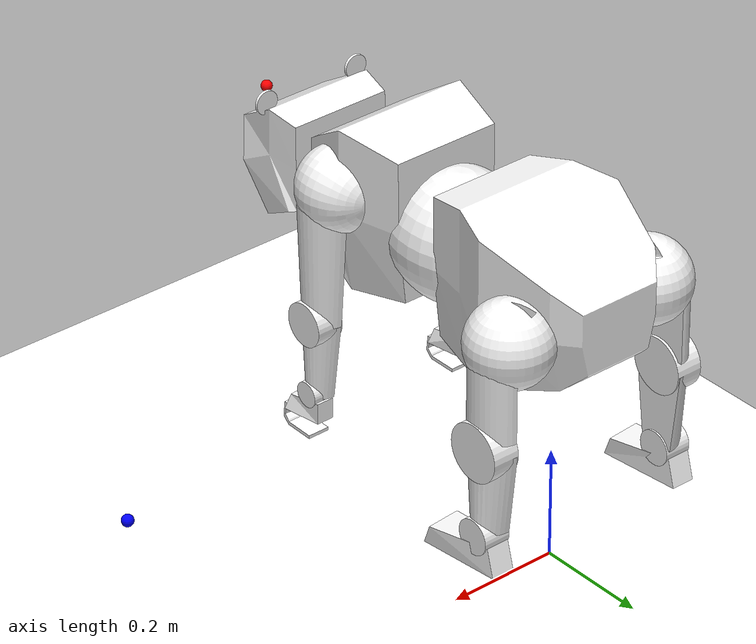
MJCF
<?xml version="1.0" encoding="utf-8"?>
<mujoco model="ground plane">
 <compiler angle="radian" autolimits="true"/>
 <asset>
  <!-- Define checker texture -->
  <texture builtin="checker" height="512" name="checker_tex" rgb1="0.2 0.2 0.6" rgb2="0.8 0.8 1.0" type="2d" width="512"/>
  <material name="checker_mat" texrepeat="3 5" texture="checker_tex"/>
  <mesh file="..\mujoco/..\mujoco/assets/TaiwanBear/Body.obj" name="Body"/>
  <mesh file="..\mujoco/..\mujoco/assets/TaiwanBear/Sphere.008.obj" name="Sphere.008"/>
  <mesh file="..\mujoco/..\mujoco/assets/TaiwanBear/Cylinder.029.obj" name="Cylinder.029"/>
  <mesh file="..\mujoco/..\mujoco/assets/TaiwanBear/Cylinder.028.obj" name="Cylinder.028"/>
  <mesh file="..\mujoco/..\mujoco/assets/TaiwanBear/Cylinder.027.obj" name="Cylinder.027"/>
  <mesh file="..\mujoco/..\mujoco/assets/TaiwanBear/Cylinder.026.obj" name="Cylinder.026"/>
  <mesh file="..\mujoco/..\mujoco/assets/TaiwanBear/Cylinder.025.obj" name="Cylinder.025"/>
  <mesh file="..\mujoco/..\mujoco/assets/TaiwanBear/Sphere.001.obj" name="Sphere.001"/>
  <mesh file="..\mujoco/..\mujoco/assets/TaiwanBear/Cylinder.007.obj" name="Cylinder.007"/>
  <mesh file="..\mujoco/..\mujoco/assets/TaiwanBear/Cylinder.006.obj" name="Cylinder.006"/>
  <mesh file="..\mujoco/..\mujoco/assets/TaiwanBear/Cylinder.005.obj" name="Cylinder.005"/>
  <mesh file="..\mujoco/..\mujoco/assets/TaiwanBear/Cylinder.003.obj" name="Cylinder.003"/>
  <mesh file="..\mujoco/..\mujoco/assets/TaiwanBear/Cylinder.002.obj" name="Cylinder.002"/>
  <mesh file="..\mujoco/..\mujoco/assets/TaiwanBear/Sphere.009.obj" name="Sphere.009"/>
  <mesh file="..\mujoco/..\mujoco/assets/TaiwanBear/Body.002.obj" name="Body.002"/>
  <mesh file="..\mujoco/..\mujoco/assets/TaiwanBear/Sphere.004.obj" name="Sphere.004"/>
  <mesh file="..\mujoco/..\mujoco/assets/TaiwanBear/Cylinder.009.obj" name="Cylinder.009"/>
  <mesh file="..\mujoco/..\mujoco/assets/TaiwanBear/Cylinder.021.obj" name="Cylinder.021"/>
  <mesh file="..\mujoco/..\mujoco/assets/TaiwanBear/Cylinder.022.obj" name="Cylinder.022"/>
  <mesh file="..\mujoco/..\mujoco/assets/TaiwanBear/Cylinder.023.obj" name="Cylinder.023"/>
  <mesh file="..\mujoco/..\mujoco/assets/TaiwanBear/Cylinder.024.obj" name="Cylinder.024"/>
  <mesh file="..\mujoco/..\mujoco/assets/TaiwanBear/Cube.obj" name="Cube"/>
  <mesh file="..\mujoco/..\mujoco/assets/TaiwanBear/Sphere.003.obj" name="Sphere.003"/>
  <mesh file="..\mujoco/..\mujoco/assets/TaiwanBear/Cylinder.001.obj" name="Cylinder.001"/>
  <mesh file="..\mujoco/..\mujoco/assets/TaiwanBear/Cylinder.004.obj" name="Cylinder.004"/>
  <mesh file="..\mujoco/..\mujoco/assets/TaiwanBear/Cylinder.011.obj" name="Cylinder.011"/>
  <mesh file="..\mujoco/..\mujoco/assets/TaiwanBear/Cylinder.012.obj" name="Cylinder.012"/>
  <mesh file="..\mujoco/..\mujoco/assets/TaiwanBear/Cylinder.013.obj" name="Cylinder.013"/>
  <mesh file="..\mujoco/..\mujoco/assets/TaiwanBear/Cube.001.obj" name="Cube.001"/>
  <mesh file="..\mujoco/..\mujoco/assets/TaiwanBear/Sphere.002.obj" name="Sphere.002"/>
  <mesh file="..\mujoco/..\mujoco/assets/TaiwanBear/Body.001.obj" name="Body.001"/>
 </asset>
 <worldbody>
  <camera pos="1.377 -4.506 2.566" xyaxes="0.956 0.292 0.000 -0.140 0.457 0.878"/>
  <body name="ground" pos="0 0 0">
   <geom material="checker_mat" name="floor" rgba="1 1 1 1" size="10 10 0.01" type="plane"/>
  </body>
  <body mocap="true" name="Head Target" pos="0.8 -0.05 0.40" quat="1 0 0 0">
   <site group="1" rgba="0 0 1 1" size="0.01" type="sphere"/>
  </body>
  <body euler="0 0 0" name="TaiwanBear" pos="0 0 0.5">
   <freejoint/>
   <geom mesh="Body" name="TaiwanBear geom" rgba="1.0 1.0 1.0 1.0" type="mesh"/>
   <!-- Parent World [[1.0,0.0,0.0,-0.0],[0.0,1.0,0.0,-0.0],[0.0,0.0,1.0,0.4],[0.0,0.0,0.0,1.0]]-->
   <!-- Parent local [[1.0,0.0,0.0,-0.0],[0.0,1.0,0.0,-0.0],[0.0,0.0,1.0,0.4],[0.0,0.0,0.0,1.0]]-->
   <!-- Parent Inverse [[1.0,0.0,0.0,0.0],[0.0,1.0,0.0,0.0],[0.0,0.0,1.0,0.0],[0.0,0.0,0.0,1.0]]-->
   <!-- Child World [[-0.0,0.0,1.0,0.14],[0.0,1.0,0.0,0.06],[-1.0,0.0,-0.0,-0.01],[0.0,0.0,0.0,1.0]]-->
   <!-- Child Local [[-0.0,0.0,1.0,0.14],[0.0,1.0,0.0,0.06],[-1.0,0.0,-0.0,-0.41],[0.0,0.0,0.0,1.0]]-->
   <!-- Child Basis [[-0.0,0.0,1.0,0.14],[0.0,1.0,0.0,0.06],[-1.0,0.0,-0.0,-0.01],[0.0,0.0,0.0,1.0]]-->
   <!-- Relative Matrix [[-0.0,0.0,1.0,0.14],[0.0,1.0,0.0,0.06],[-1.0,0.0,-0.0,-0.01],[0.0,0.0,0.0,1.0]]-->
   <body name="RJoint_Back_Upper_XYZ_L" pos="0.14427818357944489 0.058760032057762146 -0.007478982210159302" quat="0.7071067094802856 0.0 0.7071068286895752 0.0">
    <joint armature="0.045" axis="1 0 0" damping="3" frictionloss="0.03" name="RJoint_Back_Upper_XYZ_L_X" pos="0.0 0.0 0.0" type="hinge"/>
    <joint armature="0.045" axis="0 1 0" damping="3" frictionloss="0.03" name="RJoint_Back_Upper_XYZ_L_Y" pos="0.0 0.0 0.0" type="hinge"/>
    <joint armature="0.045" axis="0 0 1" damping="3" frictionloss="0.03" name="RJoint_Back_Upper_XYZ_L_Z" pos="0.0 0.0 0.0" type="hinge"/>
    <geom mesh="Sphere.008" name="RJoint_Back_Upper_XYZ_L geom" rgba="1.0 1.0 1.0 1.0" type="mesh"/>
    <!-- Parent World [[-0.0,0.0,1.0,0.14],[0.0,1.0,0.0,0.06],[-1.0,0.0,-0.0,0.39],[0.0,0.0,0.0,1.0]]-->
    <!-- Parent local [[-0.0,0.0,1.0,0.14],[0.0,1.0,0.0,0.06],[-1.0,0.0,-0.0,-0.01],[0.0,0.0,0.0,1.0]]-->
    <!-- Parent Inverse [[1.0,0.0,0.0,0.0],[0.0,1.0,0.0,0.0],[0.0,0.0,1.0,0.0],[0.0,0.0,0.0,1.0]]-->
    <!-- Child World [[-0.0,0.0,-1.0,0.07],[0.0,1.0,0.0,0.0],[1.0,0.0,-0.0,0.05],[0.0,0.0,0.0,1.0]]-->
    <!-- Child Local [[-1.0,0.0,0.0,0.34],[0.0,1.0,0.0,-0.06],[-0.0,0.0,-1.0,-0.07],[0.0,0.0,0.0,1.0]]-->
    <!-- Child Basis [[-0.0,0.0,-1.0,0.07],[0.0,1.0,0.0,0.0],[1.0,0.0,-0.0,0.05],[0.0,0.0,0.0,1.0]]-->
    <!-- Relative Matrix [[-0.0,0.0,-1.0,0.07],[0.0,1.0,0.0,0.0],[1.0,0.0,-0.0,0.05],[0.0,0.0,0.0,1.0]]-->
    <body name="Link_Back_Upper_L" pos="0.07168442010879517 0.0024633705615997314 0.054209932684898376" quat="0.7071067094802856 -0.0 -0.7071068286895752 -0.0">
     <geom mesh="Cylinder.029" name="Link_Back_Upper_L geom" rgba="1.0 1.0 1.0 1.0" type="mesh"/>
     <!-- Parent World [[1.0,0.0,0.0,0.2],[0.0,1.0,0.0,0.06],[0.0,0.0,1.0,0.32],[0.0,0.0,0.0,1.0]]-->
     <!-- Parent local [[-0.0,0.0,-1.0,0.07],[0.0,1.0,0.0,0.0],[1.0,0.0,-0.0,0.05],[0.0,0.0,0.0,1.0]]-->
     <!-- Parent Inverse [[1.0,0.0,0.0,0.0],[0.0,1.0,0.0,0.0],[0.0,0.0,1.0,0.0],[0.0,0.0,0.0,1.0]]-->
     <!-- Child World [[-0.0,0.0,1.0,-0.01],[0.0,1.0,0.0,-0.0],[-1.0,0.0,-0.0,-0.1],[0.0,0.0,0.0,1.0]]-->
     <!-- Child Local [[-0.0,0.0,1.0,-0.2],[0.0,1.0,0.0,-0.06],[-1.0,0.0,-0.0,-0.42],[0.0,0.0,0.0,1.0]]-->
     <!-- Child Basis [[-0.0,0.0,1.0,-0.01],[0.0,1.0,0.0,-0.0],[-1.0,0.0,-0.0,-0.1],[0.0,0.0,0.0,1.0]]-->
     <!-- Relative Matrix [[-0.0,0.0,1.0,-0.01],[0.0,1.0,0.0,-0.0],[-1.0,0.0,-0.0,-0.1],[0.0,0.0,0.0,1.0]]-->
     <body name="RJoint_Back_Lower_Z_L" pos="-0.005224734544754028 -0.002412572503089905 -0.10004378855228424" quat="0.7071067094802856 0.0 0.7071068286895752 0.0">
      <joint armature="0.045" axis="-1.4901161193847656e-07 0.0 -0.9999999403953552" damping="3" frictionloss="0.03" name="RJoint_Back_Lower_Z_L_Z" pos="0.0 0.0 0.0" type="hinge"/>
      <geom mesh="Cylinder.028" name="RJoint_Back_Lower_Z_L geom" rgba="1.0 1.0 1.0 1.0" type="mesh"/>
      <!-- Parent World [[-0.0,0.0,1.0,0.19],[0.0,1.0,0.0,0.06],[-1.0,0.0,-0.0,0.22],[0.0,0.0,0.0,1.0]]-->
      <!-- Parent local [[-0.0,0.0,1.0,-0.01],[0.0,1.0,0.0,-0.0],[-1.0,0.0,-0.0,-0.1],[0.0,0.0,0.0,1.0]]-->
      <!-- Parent Inverse [[1.0,0.0,0.0,0.0],[0.0,1.0,0.0,0.0],[0.0,0.0,1.0,0.0],[0.0,0.0,0.0,1.0]]-->
      <!-- Child World [[-0.0,0.0,-1.0,0.08],[0.0,1.0,0.0,0.0],[1.0,0.0,-0.0,0.0],[0.0,0.0,0.0,1.0]]-->
      <!-- Child Local [[-1.0,0.0,0.0,0.22],[0.0,1.0,0.0,-0.06],[-0.0,0.0,-1.0,-0.12],[0.0,0.0,0.0,1.0]]-->
      <!-- Child Basis [[-0.0,0.0,-1.0,0.08],[0.0,1.0,0.0,0.0],[1.0,0.0,-0.0,0.0],[0.0,0.0,0.0,1.0]]-->
      <!-- Relative Matrix [[-0.0,0.0,-1.0,0.08],[0.0,1.0,0.0,0.0],[1.0,0.0,-0.0,0.0],[0.0,0.0,0.0,1.0]]-->
      <body name="Link_Back_Lower_L" pos="0.07540285587310791 0.0024126097559928894 0.004566282033920288" quat="0.7071067094802856 -0.0 -0.7071068286895752 -0.0">
       <geom mesh="Cylinder.027" name="Link_Back_Lower_L geom" rgba="1.0 1.0 1.0 1.0" type="mesh"/>
       <!-- Parent World [[1.0,0.0,0.0,0.2],[0.0,1.0,0.0,0.06],[-0.0,0.0,1.0,0.15],[0.0,0.0,0.0,1.0]]-->
       <!-- Parent local [[-0.0,0.0,-1.0,0.08],[0.0,1.0,0.0,0.0],[1.0,0.0,-0.0,0.0],[0.0,0.0,0.0,1.0]]-->
       <!-- Parent Inverse [[1.0,0.0,0.0,-0.0],[0.0,1.0,0.0,0.0],[0.0,0.0,1.0,0.0],[0.0,0.0,0.0,1.0]]-->
       <!-- Child World [[-0.0,0.0,1.0,-0.0],[0.0,1.0,0.0,-0.0],[-1.0,0.0,-0.0,-0.08],[0.0,0.0,0.0,1.0]]-->
       <!-- Child Local [[-0.0,0.0,1.0,-0.2],[0.0,1.0,0.0,-0.06],[-1.0,0.0,-0.0,-0.23],[0.0,0.0,0.0,1.0]]-->
       <!-- Child Basis [[-0.0,0.0,1.0,-0.0],[0.0,1.0,0.0,-0.0],[-1.0,0.0,-0.0,-0.08],[0.0,0.0,0.0,1.0]]-->
       <!-- Relative Matrix [[-0.0,0.0,1.0,-0.0],[0.0,1.0,0.0,-0.0],[-1.0,0.0,-0.0,-0.08],[0.0,0.0,0.0,1.0]]-->
       <body name="RJoint_Back_Ankle_Z_L" pos="-0.004567772150039673 -0.0024125464260578156 -0.08303964138031006" quat="0.7071067094802856 0.0 0.7071068286895752 0.0">
        <joint armature="0.045" axis="-1.4901161193847656e-07 0.0 -0.9999999403953552" damping="3" frictionloss="0.03" name="RJoint_Back_Ankle_Z_L_Z" pos="0.0 0.0 0.0" type="hinge"/>
        <geom mesh="Cylinder.026" name="RJoint_Back_Ankle_Z_L geom" rgba="1.0 1.0 1.0 1.0" type="mesh"/>
        <!-- Parent World [[-0.0,0.0,1.0,0.19],[0.0,1.0,0.0,0.06],[-1.0,0.0,-0.0,0.06],[0.0,0.0,0.0,1.0]]-->
        <!-- Parent local [[-0.0,0.0,1.0,-0.0],[0.0,1.0,0.0,-0.0],[-1.0,0.0,-0.0,-0.08],[0.0,0.0,0.0,1.0]]-->
        <!-- Parent Inverse [[1.0,0.0,0.0,-0.0],[0.0,1.0,0.0,0.0],[0.0,0.0,1.0,-0.0],[0.0,0.0,0.0,1.0]]-->
        <!-- Child World [[-0.0,0.0,-1.0,0.04],[0.0,1.0,0.0,-0.03],[1.0,0.0,-0.0,-0.0],[0.0,0.0,0.0,1.0]]-->
        <!-- Child Local [[-1.0,0.0,0.0,0.06],[0.0,1.0,0.0,-0.09],[-0.0,0.0,-1.0,-0.15],[0.0,0.0,0.0,1.0]]-->
        <!-- Child Basis [[-0.0,0.0,-1.0,0.04],[0.0,1.0,0.0,-0.03],[1.0,0.0,-0.0,-0.0],[0.0,0.0,0.0,1.0]]-->
        <!-- Relative Matrix [[-0.0,0.0,-1.0,0.04],[0.0,1.0,0.0,-0.03],[1.0,0.0,-0.0,-0.0],[0.0,0.0,0.0,1.0]]-->
        <body name="Link_Back_Foot_L" pos="0.03862288221716881 -0.032784026116132736 -9.390711784362793e-05" quat="0.7071067094802856 -0.0 -0.7071068286895752 -0.0">
         <geom mesh="Cylinder.025" name="Link_Back_Foot_L geom" rgba="1.0 1.0 1.0 1.0" type="mesh"/>
        </body>
       </body>
      </body>
     </body>
    </body>
   </body>
   <!-- Parent World [[1.0,0.0,0.0,-0.0],[0.0,1.0,0.0,-0.0],[0.0,0.0,1.0,0.4],[0.0,0.0,0.0,1.0]]-->
   <!-- Parent local [[1.0,0.0,0.0,-0.0],[0.0,1.0,0.0,-0.0],[0.0,0.0,1.0,0.4],[0.0,0.0,0.0,1.0]]-->
   <!-- Parent Inverse [[1.0,0.0,0.0,0.0],[0.0,1.0,0.0,0.0],[0.0,0.0,1.0,0.0],[0.0,0.0,0.0,1.0]]-->
   <!-- Child World [[-0.0,0.0,-1.0,-0.14],[0.0,1.0,0.0,0.06],[1.0,0.0,-0.0,0.39],[0.0,0.0,0.0,1.0]]-->
   <!-- Child Local [[-0.0,0.0,-1.0,-0.14],[0.0,1.0,0.0,0.06],[1.0,0.0,-0.0,-0.01],[0.0,0.0,0.0,1.0]]-->
   <!-- Child Basis [[-0.0,0.0,-1.0,-0.14],[0.0,1.0,0.0,0.06],[1.0,0.0,-0.0,-0.01],[0.0,0.0,0.0,1.0]]-->
   <!-- Relative Matrix [[-0.0,0.0,-1.0,-0.14],[0.0,1.0,0.0,0.06],[1.0,0.0,-0.0,-0.01],[0.0,0.0,0.0,1.0]]-->
   <body name="RJoint_Back_Upper_XYZ_R" pos="-0.14427809417247772 0.05876001715660095 -0.007478952407836914" quat="0.7071067094802856 -0.0 -0.7071068286895752 -0.0">
    <joint armature="0.045" axis="1 0 0" damping="3" frictionloss="0.03" name="RJoint_Back_Upper_XYZ_R_X" pos="0.0 0.0 0.0" type="hinge"/>
    <joint armature="0.045" axis="0 1 0" damping="3" frictionloss="0.03" name="RJoint_Back_Upper_XYZ_R_Y" pos="0.0 0.0 0.0" type="hinge"/>
    <joint armature="0.045" axis="0 0 1" damping="3" frictionloss="0.03" name="RJoint_Back_Upper_XYZ_R_Z" pos="0.0 0.0 0.0" type="hinge"/>
    <geom mesh="Sphere.001" name="RJoint_Back_Upper_XYZ_R geom" rgba="1.0 1.0 1.0 1.0" type="mesh"/>
    <!-- Parent World [[-0.0,0.0,-1.0,-0.14],[0.0,1.0,0.0,0.06],[1.0,0.0,-0.0,0.39],[0.0,0.0,0.0,1.0]]-->
    <!-- Parent local [[-0.0,0.0,-1.0,-0.14],[0.0,1.0,0.0,0.06],[1.0,0.0,-0.0,-0.01],[0.0,0.0,0.0,1.0]]-->
    <!-- Parent Inverse [[1.0,0.0,0.0,-0.0],[0.0,1.0,0.0,0.0],[0.0,0.0,1.0,0.0],[0.0,0.0,0.0,1.0]]-->
    <!-- Child World [[-0.0,0.0,1.0,-0.07],[0.0,1.0,0.0,0.0],[-1.0,0.0,-0.0,0.05],[0.0,0.0,0.0,1.0]]-->
    <!-- Child Local [[-1.0,0.0,-0.0,-0.34],[0.0,1.0,0.0,-0.06],[0.0,0.0,-1.0,-0.07],[0.0,0.0,0.0,1.0]]-->
    <!-- Child Basis [[-0.0,0.0,1.0,-0.07],[0.0,1.0,0.0,0.0],[-1.0,0.0,-0.0,0.05],[0.0,0.0,0.0,1.0]]-->
    <!-- Relative Matrix [[-0.0,0.0,1.0,-0.07],[0.0,1.0,0.0,0.0],[-1.0,0.0,-0.0,0.05],[0.0,0.0,0.0,1.0]]-->
    <body name="Link_Back_Upper_R" pos="-0.07168391346931458 0.002463463693857193 0.054211124777793884" quat="0.7071067094802856 0.0 0.7071068286895752 0.0">
     <geom mesh="Cylinder.007" name="Link_Back_Upper_R geom" rgba="1.0 1.0 1.0 1.0" type="mesh"/>
     <!-- Parent World [[1.0,0.0,0.0,-0.2],[0.0,1.0,0.0,0.06],[0.0,0.0,1.0,0.32],[0.0,0.0,0.0,1.0]]-->
     <!-- Parent local [[-0.0,0.0,1.0,-0.07],[0.0,1.0,0.0,0.0],[-1.0,0.0,-0.0,0.05],[0.0,0.0,0.0,1.0]]-->
     <!-- Parent Inverse [[1.0,0.0,0.0,0.0],[0.0,1.0,0.0,0.0],[0.0,0.0,1.0,0.0],[0.0,0.0,0.0,1.0]]-->
     <!-- Child World [[-0.0,0.0,-1.0,0.01],[0.0,1.0,0.0,-0.0],[1.0,0.0,-0.0,-0.1],[0.0,0.0,0.0,1.0]]-->
     <!-- Child Local [[-0.0,0.0,-1.0,0.2],[0.0,1.0,0.0,-0.06],[1.0,0.0,-0.0,-0.42],[0.0,0.0,0.0,1.0]]-->
     <!-- Child Basis [[-0.0,0.0,-1.0,0.01],[0.0,1.0,0.0,-0.0],[1.0,0.0,-0.0,-0.1],[0.0,0.0,0.0,1.0]]-->
     <!-- Relative Matrix [[-0.0,0.0,-1.0,0.01],[0.0,1.0,0.0,-0.0],[1.0,0.0,-0.0,-0.1],[0.0,0.0,0.0,1.0]]-->
     <body name="RJoint_Back_Lower_Z_R" pos="0.005224123597145081 -0.002412468194961548 -0.10004405677318573" quat="0.7071067094802856 -0.0 -0.7071068286895752 -0.0">
      <joint armature="0.045" axis="-1.4901161193847656e-07 0.0 0.9999999403953552" damping="3" frictionloss="0.03" name="RJoint_Back_Lower_Z_R_Z" pos="0.0 0.0 0.0" type="hinge"/>
      <geom mesh="Cylinder.006" name="RJoint_Back_Lower_Z_R geom" rgba="1.0 1.0 1.0 1.0" type="mesh"/>
      <!-- Parent World [[-0.0,0.0,-1.0,-0.19],[0.0,1.0,0.0,0.06],[1.0,0.0,-0.0,0.22],[0.0,0.0,0.0,1.0]]-->
      <!-- Parent local [[-0.0,0.0,-1.0,0.01],[0.0,1.0,0.0,-0.0],[1.0,0.0,-0.0,-0.1],[0.0,0.0,0.0,1.0]]-->
      <!-- Parent Inverse [[1.0,0.0,0.0,-0.0],[0.0,1.0,0.0,0.0],[0.0,0.0,1.0,0.0],[0.0,0.0,0.0,1.0]]-->
      <!-- Child World [[-0.0,0.0,1.0,-0.08],[0.0,1.0,0.0,0.0],[-1.0,0.0,-0.0,0.0],[0.0,0.0,0.0,1.0]]-->
      <!-- Child Local [[-1.0,0.0,-0.0,-0.22],[0.0,1.0,0.0,-0.06],[0.0,0.0,-1.0,-0.12],[0.0,0.0,0.0,1.0]]-->
      <!-- Child Basis [[-0.0,0.0,1.0,-0.08],[0.0,1.0,0.0,0.0],[-1.0,0.0,-0.0,0.0],[0.0,0.0,0.0,1.0]]-->
      <!-- Relative Matrix [[-0.0,0.0,1.0,-0.08],[0.0,1.0,0.0,0.0],[-1.0,0.0,-0.0,0.0],[0.0,0.0,0.0,1.0]]-->
      <body name="Link_Back_Lower_R" pos="-0.07540372014045715 0.002412736415863037 0.004567325115203857" quat="0.7071067094802856 0.0 0.7071068286895752 0.0">
       <geom mesh="Cylinder.005" name="Link_Back_Lower_R geom" rgba="1.0 1.0 1.0 1.0" type="mesh"/>
       <!-- Parent World [[1.0,0.0,-0.0,-0.2],[0.0,1.0,0.0,0.06],[0.0,0.0,1.0,0.15],[0.0,0.0,0.0,1.0]]-->
       <!-- Parent local [[-0.0,0.0,1.0,-0.08],[0.0,1.0,0.0,0.0],[-1.0,0.0,-0.0,0.0],[0.0,0.0,0.0,1.0]]-->
       <!-- Parent Inverse [[1.0,0.0,0.0,0.0],[0.0,1.0,0.0,0.0],[0.0,0.0,1.0,0.0],[0.0,0.0,0.0,1.0]]-->
       <!-- Child World [[-0.0,0.0,-1.0,0.0],[0.0,1.0,0.0,-0.0],[1.0,0.0,-0.0,-0.08],[0.0,0.0,0.0,1.0]]-->
       <!-- Child Local [[-0.0,0.0,-1.0,0.2],[0.0,1.0,0.0,-0.06],[1.0,0.0,-0.0,-0.23],[0.0,0.0,0.0,1.0]]-->
       <!-- Child Basis [[-0.0,0.0,-1.0,0.0],[0.0,1.0,0.0,-0.0],[1.0,0.0,-0.0,-0.08],[0.0,0.0,0.0,1.0]]-->
       <!-- Relative Matrix [[-0.0,0.0,-1.0,0.0],[0.0,1.0,0.0,-0.0],[1.0,0.0,-0.0,-0.08],[0.0,0.0,0.0,1.0]]-->
       <body name="RJoint_Back_Ankle_Z_R" pos="0.004567652940750122 -0.002412468194961548 -0.08304057270288467" quat="0.7071067094802856 -0.0 -0.7071068286895752 -0.0">
        <joint armature="0.045" axis="-1.4901161193847656e-07 0.0 0.9999999403953552" damping="3" frictionloss="0.03" name="RJoint_Back_Ankle_Z_R_Z" pos="0.0 0.0 0.0" type="hinge"/>
        <geom mesh="Cylinder.003" name="RJoint_Back_Ankle_Z_R geom" rgba="1.0 1.0 1.0 1.0" type="mesh"/>
        <!-- Parent World [[-0.0,0.0,-1.0,-0.19],[0.0,1.0,0.0,0.06],[1.0,0.0,-0.0,0.06],[0.0,0.0,0.0,1.0]]-->
        <!-- Parent local [[-0.0,0.0,-1.0,0.0],[0.0,1.0,0.0,-0.0],[1.0,0.0,-0.0,-0.08],[0.0,0.0,0.0,1.0]]-->
        <!-- Parent Inverse [[1.0,0.0,0.0,0.0],[0.0,1.0,0.0,0.0],[0.0,0.0,1.0,-0.0],[0.0,0.0,0.0,1.0]]-->
        <!-- Child World [[-0.0,0.0,1.0,-0.04],[0.0,1.0,0.0,-0.03],[-1.0,0.0,-0.0,-0.0],[0.0,0.0,0.0,1.0]]-->
        <!-- Child Local [[-1.0,0.0,-0.0,-0.06],[0.0,1.0,0.0,-0.09],[0.0,0.0,-1.0,-0.15],[0.0,0.0,0.0,1.0]]-->
        <!-- Child Basis [[-0.0,0.0,1.0,-0.04],[0.0,1.0,0.0,-0.03],[-1.0,0.0,-0.0,-0.0],[0.0,0.0,0.0,1.0]]-->
        <!-- Relative Matrix [[-0.0,0.0,1.0,-0.04],[0.0,1.0,0.0,-0.03],[-1.0,0.0,-0.0,-0.0],[0.0,0.0,0.0,1.0]]-->
        <body name="Link_Back_Foot_R" pos="-0.03862367197871208 -0.03278389945626259 -9.386241436004639e-05" quat="0.7071067094802856 0.0 0.7071068286895752 0.0">
         <geom mesh="Cylinder.002" name="Link_Back_Foot_R geom" rgba="1.0 1.0 1.0 1.0" type="mesh"/>
        </body>
       </body>
      </body>
     </body>
    </body>
   </body>
   <!-- Parent World [[1.0,0.0,0.0,-0.0],[0.0,1.0,0.0,-0.0],[0.0,0.0,1.0,0.4],[0.0,0.0,0.0,1.0]]-->
   <!-- Parent local [[1.0,0.0,0.0,-0.0],[0.0,1.0,0.0,-0.0],[0.0,0.0,1.0,0.4],[0.0,0.0,0.0,1.0]]-->
   <!-- Parent Inverse [[1.0,0.0,0.0,0.0],[0.0,1.0,0.0,0.0],[0.0,0.0,1.0,0.0],[0.0,0.0,0.0,1.0]]-->
   <!-- Child World [[1.0,0.0,0.0,0.0],[0.0,1.0,0.0,-0.22],[0.0,0.0,1.0,0.4],[0.0,0.0,0.0,1.0]]-->
   <!-- Child Local [[1.0,0.0,0.0,0.0],[0.0,1.0,0.0,-0.22],[0.0,0.0,1.0,0.0],[0.0,0.0,0.0,1.0]]-->
   <!-- Child Basis [[1.0,0.0,0.0,0.0],[0.0,1.0,0.0,-0.22],[0.0,0.0,1.0,0.0],[0.0,0.0,0.0,1.0]]-->
   <!-- Relative Matrix [[1.0,0.0,0.0,0.0],[0.0,1.0,0.0,-0.22],[0.0,0.0,1.0,0.0],[0.0,0.0,0.0,1.0]]-->
   <body name="RJoint_Torso_C_XYZ_C" pos="1.1123316490113666e-08 -0.22252711653709412 1.4901161193847656e-07" quat="1.0 0.0 0.0 0.0">
    <joint armature="0.045" axis="1 0 0" damping="3" frictionloss="0.03" name="RJoint_Torso_C_XYZ_C_X" pos="0.0 0.0 0.0" type="hinge"/>
    <joint armature="0.045" axis="0 1 0" damping="3" frictionloss="0.03" name="RJoint_Torso_C_XYZ_C_Y" pos="0.0 0.0 0.0" type="hinge"/>
    <joint armature="0.045" axis="0 0 1" damping="3" frictionloss="0.03" name="RJoint_Torso_C_XYZ_C_Z" pos="0.0 0.0 0.0" type="hinge"/>
    <geom mesh="Sphere.009" name="RJoint_Torso_C_XYZ_C geom" rgba="1.0 1.0 1.0 1.0" type="mesh"/>
    <!-- Parent World [[1.0,0.0,0.0,0.0],[0.0,1.0,0.0,-0.22],[0.0,0.0,1.0,0.4],[0.0,0.0,0.0,1.0]]-->
    <!-- Parent local [[1.0,0.0,0.0,0.0],[0.0,1.0,0.0,-0.22],[0.0,0.0,1.0,0.0],[0.0,0.0,0.0,1.0]]-->
    <!-- Parent Inverse [[1.0,0.0,0.0,0.0],[0.0,1.0,0.0,0.0],[0.0,0.0,1.0,0.0],[0.0,0.0,0.0,1.0]]-->
    <!-- Child World [[1.0,0.0,0.0,0.0],[0.0,1.0,0.0,-0.18],[0.0,0.0,1.0,0.0],[0.0,0.0,0.0,1.0]]-->
    <!-- Child Local [[1.0,0.0,0.0,0.0],[0.0,1.0,0.0,0.04],[0.0,0.0,1.0,-0.4],[0.0,0.0,0.0,1.0]]-->
    <!-- Child Basis [[1.0,0.0,0.0,0.0],[0.0,1.0,0.0,-0.18],[0.0,0.0,1.0,0.0],[0.0,0.0,0.0,1.0]]-->
    <!-- Relative Matrix [[1.0,0.0,0.0,0.0],[0.0,1.0,0.0,-0.18],[0.0,0.0,1.0,0.0],[0.0,0.0,0.0,1.0]]-->
    <body name="Link_UpperBody_C" pos="5.992328766524224e-08 -0.18047350645065308 0.0019748806953430176" quat="1.0 0.0 0.0 0.0">
     <geom mesh="Body.002" name="Link_UpperBody_C geom" rgba="1.0 1.0 1.0 1.0" type="mesh"/>
     <!-- Parent World [[1.0,0.0,0.0,0.0],[0.0,1.0,0.0,-0.4],[0.0,0.0,1.0,0.4],[0.0,0.0,0.0,1.0]]-->
     <!-- Parent local [[1.0,0.0,0.0,0.0],[0.0,1.0,0.0,-0.18],[0.0,0.0,1.0,0.0],[0.0,0.0,0.0,1.0]]-->
     <!-- Parent Inverse [[1.0,0.0,0.0,0.0],[0.0,1.0,0.0,0.0],[0.0,0.0,1.0,0.0],[0.0,0.0,0.0,1.0]]-->
     <!-- Child World [[-0.0,0.0,1.0,0.1],[0.0,1.0,0.0,0.01],[-1.0,0.0,-0.0,0.05],[0.0,0.0,0.0,1.0]]-->
     <!-- Child Local [[-0.0,0.0,1.0,0.1],[0.0,1.0,0.0,0.41],[-1.0,0.0,-0.0,-0.36],[0.0,0.0,0.0,1.0]]-->
     <!-- Child Basis [[-0.0,0.0,1.0,0.1],[0.0,1.0,0.0,0.01],[-1.0,0.0,-0.0,0.05],[0.0,0.0,0.0,1.0]]-->
     <!-- Relative Matrix [[-0.0,0.0,1.0,0.1],[0.0,1.0,0.0,0.01],[-1.0,0.0,-0.0,0.05],[0.0,0.0,0.0,1.0]]-->
     <body name="RJoint_Front_Upper_XYZ_L" pos="0.1049974113702774 0.005444914102554321 0.04802507162094116" quat="0.7071067094802856 0.0 0.7071068286895752 0.0">
      <joint armature="0.045" axis="1 0 0" damping="3" frictionloss="0.03" name="RJoint_Front_Upper_XYZ_L_X" pos="0.0 0.0 0.0" type="hinge"/>
      <joint armature="0.045" axis="0 1 0" damping="3" frictionloss="0.03" name="RJoint_Front_Upper_XYZ_L_Y" pos="0.0 0.0 0.0" type="hinge"/>
      <joint armature="0.045" axis="0 0 1" damping="3" frictionloss="0.03" name="RJoint_Front_Upper_XYZ_L_Z" pos="0.0 0.0 0.0" type="hinge"/>
      <geom mesh="Sphere.004" name="RJoint_Front_Upper_XYZ_L geom" rgba="1.0 1.0 1.0 1.0" type="mesh"/>
      <!-- Parent World [[-0.0,0.0,1.0,0.1],[0.0,1.0,0.0,-0.4],[-1.0,0.0,-0.0,0.45],[0.0,0.0,0.0,1.0]]-->
      <!-- Parent local [[-0.0,0.0,1.0,0.1],[0.0,1.0,0.0,0.01],[-1.0,0.0,-0.0,0.05],[0.0,0.0,0.0,1.0]]-->
      <!-- Parent Inverse [[1.0,0.0,0.0,-0.0],[0.0,1.0,0.0,-0.0],[0.0,0.0,1.0,0.0],[0.0,0.0,0.0,1.0]]-->
      <!-- Child World [[-0.0,0.0,-1.0,0.13],[0.0,1.0,0.0,-0.01],[1.0,0.0,-0.0,0.05],[0.0,0.0,0.0,1.0]]-->
      <!-- Child Local [[-1.0,0.0,0.0,0.4],[0.0,1.0,0.0,0.39],[-0.0,0.0,-1.0,0.02],[0.0,0.0,0.0,1.0]]-->
      <!-- Child Basis [[-0.0,0.0,-1.0,0.13],[0.0,1.0,0.0,-0.01],[1.0,0.0,-0.0,0.05],[0.0,0.0,0.0,1.0]]-->
      <!-- Relative Matrix [[-0.0,0.0,-1.0,0.13],[0.0,1.0,0.0,-0.01],[1.0,0.0,-0.0,0.05],[0.0,0.0,0.0,1.0]]-->
      <body name="Link_Front_Upper_L" pos="0.12990225851535797 -0.006966948509216309 0.051130957901477814" quat="0.7071067094802856 -0.0 -0.7071068286895752 -0.0">
       <geom mesh="Cylinder.009" name="Link_Front_Upper_L geom" rgba="1.0 1.0 1.0 1.0" type="mesh"/>
       <!-- Parent World [[1.0,0.0,0.0,0.16],[0.0,1.0,0.0,-0.4],[0.0,0.0,1.0,0.32],[0.0,0.0,0.0,1.0]]-->
       <!-- Parent local [[-0.0,0.0,-1.0,0.13],[0.0,1.0,0.0,-0.01],[1.0,0.0,-0.0,0.05],[0.0,0.0,0.0,1.0]]-->
       <!-- Parent Inverse [[1.0,0.0,0.0,0.0],[0.0,1.0,0.0,0.0],[0.0,0.0,1.0,-0.0],[0.0,0.0,0.0,1.0]]-->
       <!-- Child World [[-0.0,0.0,1.0,-0.0],[0.0,1.0,0.0,-0.0],[-1.0,0.0,-0.0,-0.11],[0.0,0.0,0.0,1.0]]-->
       <!-- Child Local [[-0.0,0.0,1.0,-0.16],[0.0,1.0,0.0,0.4],[-1.0,0.0,-0.0,-0.43],[0.0,0.0,0.0,1.0]]-->
       <!-- Child Basis [[-0.0,0.0,1.0,-0.0],[0.0,1.0,0.0,-0.0],[-1.0,0.0,-0.0,-0.11],[0.0,0.0,0.0,1.0]]-->
       <!-- Relative Matrix [[-0.0,0.0,1.0,-0.0],[0.0,1.0,0.0,-0.0],[-1.0,0.0,-0.0,-0.11],[0.0,0.0,0.0,1.0]]-->
       <body name="RJoint_Front_Lower_Z_L" pos="-0.0030747056007385254 -0.0023990273475646973 -0.10690094530582428" quat="0.7071067094802856 0.0 0.7071068286895752 0.0">
        <joint armature="0.045" axis="-1.4901161193847656e-07 0.0 -0.9999999403953552" damping="3" frictionloss="0.03" name="RJoint_Front_Lower_Z_L_Z" pos="0.0 0.0 0.0" type="hinge"/>
        <geom mesh="Cylinder.021" name="RJoint_Front_Lower_Z_L geom" rgba="1.0 1.0 1.0 1.0" type="mesh"/>
        <!-- Parent World [[-0.0,0.0,1.0,0.15],[0.0,1.0,0.0,-0.41],[-1.0,0.0,-0.0,0.21],[0.0,0.0,0.0,1.0]]-->
        <!-- Parent local [[-0.0,0.0,1.0,-0.0],[0.0,1.0,0.0,-0.0],[-1.0,0.0,-0.0,-0.11],[0.0,0.0,0.0,1.0]]-->
        <!-- Parent Inverse [[1.0,0.0,0.0,0.0],[0.0,1.0,0.0,0.0],[0.0,0.0,1.0,0.0],[0.0,0.0,0.0,1.0]]-->
        <!-- Child World [[-0.0,0.0,-1.0,0.07],[0.0,1.0,0.0,0.0],[1.0,0.0,-0.0,0.0],[0.0,0.0,0.0,1.0]]-->
        <!-- Child Local [[-1.0,0.0,0.0,0.21],[0.0,1.0,0.0,0.41],[-0.0,0.0,-1.0,-0.08],[0.0,0.0,0.0,1.0]]-->
        <!-- Child Basis [[-0.0,0.0,-1.0,0.07],[0.0,1.0,0.0,0.0],[1.0,0.0,-0.0,0.0],[0.0,0.0,0.0,1.0]]-->
        <!-- Relative Matrix [[-0.0,0.0,-1.0,0.07],[0.0,1.0,0.0,0.0],[1.0,0.0,-0.0,0.0],[0.0,0.0,0.0,1.0]]-->
        <body name="Link_Front_Lower_L" pos="0.07289693504571915 0.0008002221584320068 0.002983391284942627" quat="0.7071067094802856 -0.0 -0.7071068286895752 -0.0">
         <geom mesh="Cylinder.022" name="Link_Front_Lower_L geom" rgba="1.0 1.0 1.0 1.0" type="mesh"/>
         <!-- Parent World [[1.0,0.0,0.0,0.16],[0.0,1.0,0.0,-0.41],[-0.0,0.0,1.0,0.14],[0.0,0.0,0.0,1.0]]-->
         <!-- Parent local [[-0.0,0.0,-1.0,0.07],[0.0,1.0,0.0,0.0],[1.0,0.0,-0.0,0.0],[0.0,0.0,0.0,1.0]]-->
         <!-- Parent Inverse [[1.0,0.0,0.0,0.0],[0.0,1.0,0.0,-0.0],[0.0,0.0,1.0,-0.0],[0.0,0.0,0.0,1.0]]-->
         <!-- Child World [[-0.0,0.0,1.0,-0.0],[0.0,1.0,0.0,-0.0],[-1.0,0.0,-0.0,-0.07],[0.0,0.0,0.0,1.0]]-->
         <!-- Child Local [[-0.0,0.0,1.0,-0.16],[0.0,1.0,0.0,0.4],[-1.0,0.0,-0.0,-0.21],[0.0,0.0,0.0,1.0]]-->
         <!-- Child Basis [[-0.0,0.0,1.0,-0.0],[0.0,1.0,0.0,-0.0],[-1.0,0.0,-0.0,-0.07],[0.0,0.0,0.0,1.0]]-->
         <!-- Relative Matrix [[-0.0,0.0,1.0,-0.0],[0.0,1.0,0.0,-0.0],[-1.0,0.0,-0.0,-0.07],[0.0,0.0,0.0,1.0]]-->
         <body name="RJoint_Front_Ankle_Z_L" pos="-0.00298386812210083 -0.003095000982284546 -0.06512180715799332" quat="0.7071067094802856 0.0 0.7071068286895752 0.0">
          <joint armature="0.045" axis="-1.4901161193847656e-07 0.0 -0.9999999403953552" damping="3" frictionloss="0.03" name="RJoint_Front_Ankle_Z_L_Z" pos="0.0 0.0 0.0" type="hinge"/>
          <geom mesh="Cylinder.023" name="RJoint_Front_Ankle_Z_L geom" rgba="1.0 1.0 1.0 1.0" type="mesh"/>
          <!-- Parent World [[-0.0,0.0,1.0,0.15],[0.0,1.0,0.0,-0.41],[-1.0,0.0,-0.0,0.08],[0.0,0.0,0.0,1.0]]-->
          <!-- Parent local [[-0.0,0.0,1.0,-0.0],[0.0,1.0,0.0,-0.0],[-1.0,0.0,-0.0,-0.07],[0.0,0.0,0.0,1.0]]-->
          <!-- Parent Inverse [[1.0,0.0,0.0,0.0],[0.0,1.0,0.0,0.0],[0.0,0.0,1.0,0.0],[0.0,0.0,0.0,1.0]]-->
          <!-- Child World [[-0.0,0.0,-1.0,0.03],[0.0,1.0,0.0,-0.01],[1.0,0.0,-0.0,0.0],[0.0,0.0,0.0,1.0]]-->
          <!-- Child Local [[-1.0,0.0,0.0,0.08],[0.0,1.0,0.0,0.4],[-0.0,0.0,-1.0,-0.12],[0.0,0.0,0.0,1.0]]-->
          <!-- Child Basis [[-0.0,0.0,-1.0,0.03],[0.0,1.0,0.0,-0.01],[1.0,0.0,-0.0,0.0],[0.0,0.0,0.0,1.0]]-->
          <!-- Relative Matrix [[-0.0,0.0,-1.0,0.03],[0.0,1.0,0.0,-0.01],[1.0,0.0,-0.0,0.0],[0.0,0.0,0.0,1.0]]-->
          <body name="Link_Front_Foot_L" pos="0.030603399500250816 -0.010764479637145996 0.0017714649438858032" quat="0.7071067094802856 -0.0 -0.7071068286895752 -0.0">
           <geom mesh="Cylinder.024" name="Link_Front_Foot_L geom" rgba="1.0 1.0 1.0 1.0" type="mesh"/>
           <!-- Parent World [[1.0,0.0,0.0,0.15],[0.0,1.0,0.0,-0.42],[-0.0,0.0,1.0,0.05],[0.0,0.0,0.0,1.0]]-->
           <!-- Parent local [[-0.0,0.0,-1.0,0.03],[0.0,1.0,0.0,-0.01],[1.0,0.0,-0.0,0.0],[0.0,0.0,0.0,1.0]]-->
           <!-- Parent Inverse [[1.0,0.0,0.0,-0.0],[0.0,1.0,0.0,-0.0],[0.0,0.0,1.0,-0.0],[0.0,0.0,0.0,1.0]]-->
           <!-- Child World [[1.0,0.0,0.0,-0.0],[0.0,1.0,0.0,-0.04],[-0.0,0.0,1.0,-0.02],[0.0,0.0,0.0,1.0]]-->
           <!-- Child Local [[1.0,0.0,0.0,-0.15],[0.0,1.0,0.0,0.38],[-0.0,0.0,1.0,-0.06],[0.0,0.0,0.0,1.0]]-->
           <!-- Child Basis [[1.0,0.0,0.0,-0.0],[0.0,1.0,0.0,-0.04],[-0.0,0.0,1.0,-0.02],[0.0,0.0,0.0,1.0]]-->
           <!-- Relative Matrix [[1.0,0.0,0.0,-0.0],[0.0,1.0,0.0,-0.04],[-0.0,0.0,1.0,-0.02],[0.0,0.0,0.0,1.0]]-->
           <body name="Cube" pos="-2.9802322387695312e-08 -0.04104888439178467 -0.01794080063700676" quat="1.0 0.0 1.421090553717884e-14 0.0">
            <geom mesh="Cube" name="Cube geom" rgba="1.0 1.0 1.0 1.0" type="mesh"/>
           </body>
          </body>
         </body>
        </body>
       </body>
      </body>
     </body>
     <!-- Parent World [[1.0,0.0,0.0,0.0],[0.0,1.0,0.0,-0.4],[0.0,0.0,1.0,0.4],[0.0,0.0,0.0,1.0]]-->
     <!-- Parent local [[1.0,0.0,0.0,0.0],[0.0,1.0,0.0,-0.18],[0.0,0.0,1.0,0.0],[0.0,0.0,0.0,1.0]]-->
     <!-- Parent Inverse [[1.0,0.0,0.0,0.0],[0.0,1.0,0.0,0.0],[0.0,0.0,1.0,0.0],[0.0,0.0,0.0,1.0]]-->
     <!-- Child World [[-0.0,0.0,-1.0,-0.1],[0.0,1.0,0.0,-0.4],[1.0,0.0,-0.0,0.45],[0.0,0.0,0.0,1.0]]-->
     <!-- Child Local [[-0.0,0.0,-1.0,-0.1],[0.0,1.0,0.0,0.01],[1.0,0.0,-0.0,0.05],[0.0,0.0,0.0,1.0]]-->
     <!-- Child Basis [[-0.0,0.0,-1.0,-0.1],[0.0,1.0,0.0,0.01],[1.0,0.0,-0.0,0.05],[0.0,0.0,0.0,1.0]]-->
     <!-- Relative Matrix [[-0.0,0.0,-1.0,-0.1],[0.0,1.0,0.0,0.01],[1.0,0.0,-0.0,0.05],[0.0,0.0,0.0,1.0]]-->
     <body name="RJoint_Front_Upper_XYZ_R" pos="-0.10499970614910126 0.0054444074630737305 0.04802501201629639" quat="0.7071067094802856 -0.0 -0.7071068286895752 -0.0">
      <joint armature="0.045" axis="1 0 0" damping="3" frictionloss="0.03" name="RJoint_Front_Upper_XYZ_R_X" pos="0.0 0.0 0.0" type="hinge"/>
      <joint armature="0.045" axis="0 1 0" damping="3" frictionloss="0.03" name="RJoint_Front_Upper_XYZ_R_Y" pos="0.0 0.0 0.0" type="hinge"/>
      <joint armature="0.045" axis="0 0 1" damping="3" frictionloss="0.03" name="RJoint_Front_Upper_XYZ_R_Z" pos="0.0 0.0 0.0" type="hinge"/>
      <geom mesh="Sphere.003" name="RJoint_Front_Upper_XYZ_R geom" rgba="1.0 1.0 1.0 1.0" type="mesh"/>
      <!-- Parent World [[-0.0,0.0,-1.0,-0.1],[0.0,1.0,0.0,-0.4],[1.0,0.0,-0.0,0.45],[0.0,0.0,0.0,1.0]]-->
      <!-- Parent local [[-0.0,0.0,-1.0,-0.1],[0.0,1.0,0.0,0.01],[1.0,0.0,-0.0,0.05],[0.0,0.0,0.0,1.0]]-->
      <!-- Parent Inverse [[1.0,0.0,0.0,0.0],[0.0,1.0,0.0,-0.0],[0.0,0.0,1.0,0.0],[0.0,0.0,0.0,1.0]]-->
      <!-- Child World [[-0.0,0.0,1.0,-0.13],[0.0,1.0,0.0,-0.01],[-1.0,0.0,-0.0,0.05],[0.0,0.0,0.0,1.0]]-->
      <!-- Child Local [[-1.0,0.0,-0.0,-0.4],[0.0,1.0,0.0,0.39],[0.0,0.0,-1.0,0.02],[0.0,0.0,0.0,1.0]]-->
      <!-- Child Basis [[-0.0,0.0,1.0,-0.13],[0.0,1.0,0.0,-0.01],[-1.0,0.0,-0.0,0.05],[0.0,0.0,0.0,1.0]]-->
      <!-- Relative Matrix [[-0.0,0.0,1.0,-0.13],[0.0,1.0,0.0,-0.01],[-1.0,0.0,-0.0,0.05],[0.0,0.0,0.0,1.0]]-->
      <body name="Link_Front_Upper_R" pos="-0.12990231812000275 -0.0069664716720581055 0.05113103240728378" quat="0.7071067094802856 0.0 0.7071068286895752 0.0">
       <geom mesh="Cylinder.001" name="Link_Front_Upper_R geom" rgba="1.0 1.0 1.0 1.0" type="mesh"/>
       <!-- Parent World [[1.0,0.0,0.0,-0.16],[0.0,1.0,0.0,-0.4],[0.0,0.0,1.0,0.32],[0.0,0.0,0.0,1.0]]-->
       <!-- Parent local [[-0.0,0.0,1.0,-0.13],[0.0,1.0,0.0,-0.01],[-1.0,0.0,-0.0,0.05],[0.0,0.0,0.0,1.0]]-->
       <!-- Parent Inverse [[1.0,0.0,0.0,0.0],[0.0,1.0,0.0,0.0],[0.0,0.0,1.0,-0.0],[0.0,0.0,0.0,1.0]]-->
       <!-- Child World [[-0.0,0.0,-1.0,0.0],[0.0,1.0,0.0,-0.0],[1.0,0.0,-0.0,-0.11],[0.0,0.0,0.0,1.0]]-->
       <!-- Child Local [[-0.0,0.0,-1.0,0.16],[0.0,1.0,0.0,0.4],[1.0,0.0,-0.0,-0.43],[0.0,0.0,0.0,1.0]]-->
       <!-- Child Basis [[-0.0,0.0,-1.0,0.0],[0.0,1.0,0.0,-0.0],[1.0,0.0,-0.0,-0.11],[0.0,0.0,0.0,1.0]]-->
       <!-- Relative Matrix [[-0.0,0.0,-1.0,0.0],[0.0,1.0,0.0,-0.0],[1.0,0.0,-0.0,-0.11],[0.0,0.0,0.0,1.0]]-->
       <body name="RJoint_Front_Lower_Z_R" pos="0.0030746757984161377 -0.002399235963821411 -0.10690154135227203" quat="0.7071067094802856 -0.0 -0.7071068286895752 -0.0">
        <joint armature="0.045" axis="-1.4901161193847656e-07 0.0 0.9999999403953552" damping="3" frictionloss="0.03" name="RJoint_Front_Lower_Z_R_Z" pos="0.0 0.0 0.0" type="hinge"/>
        <geom mesh="Cylinder.004" name="RJoint_Front_Lower_Z_R geom" rgba="1.0 1.0 1.0 1.0" type="mesh"/>
        <!-- Parent World [[-0.0,0.0,-1.0,-0.15],[0.0,1.0,0.0,-0.41],[1.0,0.0,-0.0,0.21],[0.0,0.0,0.0,1.0]]-->
        <!-- Parent local [[-0.0,0.0,-1.0,0.0],[0.0,1.0,0.0,-0.0],[1.0,0.0,-0.0,-0.11],[0.0,0.0,0.0,1.0]]-->
        <!-- Parent Inverse [[1.0,0.0,0.0,-0.0],[0.0,1.0,0.0,0.0],[0.0,0.0,1.0,0.0],[0.0,0.0,0.0,1.0]]-->
        <!-- Child World [[-0.0,0.0,1.0,-0.07],[0.0,1.0,0.0,0.0],[-1.0,0.0,-0.0,0.0],[0.0,0.0,0.0,1.0]]-->
        <!-- Child Local [[-1.0,0.0,-0.0,-0.21],[0.0,1.0,0.0,0.41],[0.0,0.0,-1.0,-0.08],[0.0,0.0,0.0,1.0]]-->
        <!-- Child Basis [[-0.0,0.0,1.0,-0.07],[0.0,1.0,0.0,0.0],[-1.0,0.0,-0.0,0.0],[0.0,0.0,0.0,1.0]]-->
        <!-- Relative Matrix [[-0.0,0.0,1.0,-0.07],[0.0,1.0,0.0,0.0],[-1.0,0.0,-0.0,0.0],[0.0,0.0,0.0,1.0]]-->
        <body name="Link_Front_Lower_R" pos="-0.07289747148752213 0.0007994771003723145 0.0029837489128112793" quat="0.7071067094802856 0.0 0.7071068286895752 0.0">
         <geom mesh="Cylinder.011" name="Link_Front_Lower_R geom" rgba="1.0 1.0 1.0 1.0" type="mesh"/>
         <!-- Parent World [[1.0,0.0,-0.0,-0.16],[0.0,1.0,0.0,-0.41],[0.0,0.0,1.0,0.14],[0.0,0.0,0.0,1.0]]-->
         <!-- Parent local [[-0.0,0.0,1.0,-0.07],[0.0,1.0,0.0,0.0],[-1.0,0.0,-0.0,0.0],[0.0,0.0,0.0,1.0]]-->
         <!-- Parent Inverse [[1.0,0.0,0.0,0.0],[0.0,1.0,0.0,-0.0],[0.0,0.0,1.0,-0.0],[0.0,0.0,0.0,1.0]]-->
         <!-- Child World [[-0.0,0.0,-1.0,0.0],[0.0,1.0,0.0,-0.0],[1.0,0.0,-0.0,-0.07],[0.0,0.0,0.0,1.0]]-->
         <!-- Child Local [[-0.0,0.0,-1.0,0.16],[0.0,1.0,0.0,0.4],[1.0,0.0,-0.0,-0.21],[0.0,0.0,0.0,1.0]]-->
         <!-- Child Basis [[-0.0,0.0,-1.0,0.0],[0.0,1.0,0.0,-0.0],[1.0,0.0,-0.0,-0.07],[0.0,0.0,0.0,1.0]]-->
         <!-- Relative Matrix [[-0.0,0.0,-1.0,0.0],[0.0,1.0,0.0,-0.0],[1.0,0.0,-0.0,-0.07],[0.0,0.0,0.0,1.0]]-->
         <body name="RJoint_Front_Ankle_Z_R" pos="0.0029840022325515747 -0.0030951201915740967 -0.06512241810560226" quat="0.7071067094802856 -0.0 -0.7071068286895752 -0.0">
          <joint armature="0.045" axis="-1.4901161193847656e-07 0.0 0.9999999403953552" damping="3" frictionloss="0.03" name="RJoint_Front_Ankle_Z_R_Z" pos="0.0 0.0 0.0" type="hinge"/>
          <geom mesh="Cylinder.012" name="RJoint_Front_Ankle_Z_R geom" rgba="1.0 1.0 1.0 1.0" type="mesh"/>
          <!-- Parent World [[-0.0,0.0,-1.0,-0.15],[0.0,1.0,0.0,-0.41],[1.0,0.0,-0.0,0.08],[0.0,0.0,0.0,1.0]]-->
          <!-- Parent local [[-0.0,0.0,-1.0,0.0],[0.0,1.0,0.0,-0.0],[1.0,0.0,-0.0,-0.07],[0.0,0.0,0.0,1.0]]-->
          <!-- Parent Inverse [[1.0,0.0,0.0,-0.0],[0.0,1.0,0.0,0.0],[0.0,0.0,1.0,0.0],[0.0,0.0,0.0,1.0]]-->
          <!-- Child World [[-0.0,0.0,1.0,-0.03],[0.0,1.0,0.0,-0.01],[-1.0,0.0,-0.0,0.0],[0.0,0.0,0.0,1.0]]-->
          <!-- Child Local [[-1.0,0.0,-0.0,-0.08],[0.0,1.0,0.0,0.4],[0.0,0.0,-1.0,-0.12],[0.0,0.0,0.0,1.0]]-->
          <!-- Child Basis [[-0.0,0.0,1.0,-0.03],[0.0,1.0,0.0,-0.01],[-1.0,0.0,-0.0,0.0],[0.0,0.0,0.0,1.0]]-->
          <!-- Relative Matrix [[-0.0,0.0,1.0,-0.03],[0.0,1.0,0.0,-0.01],[-1.0,0.0,-0.0,0.0],[0.0,0.0,0.0,1.0]]-->
          <body name="Link_Front_Foot_R" pos="-0.030604025349020958 -0.01076442003250122 0.0017713755369186401" quat="0.7071067094802856 0.0 0.7071068286895752 0.0">
           <geom mesh="Cylinder.013" name="Link_Front_Foot_R geom" rgba="1.0 1.0 1.0 1.0" type="mesh"/>
           <!-- Parent World [[1.0,0.0,-0.0,-0.15],[0.0,1.0,0.0,-0.42],[0.0,0.0,1.0,0.05],[0.0,0.0,0.0,1.0]]-->
           <!-- Parent local [[-0.0,0.0,1.0,-0.03],[0.0,1.0,0.0,-0.01],[-1.0,0.0,-0.0,0.0],[0.0,0.0,0.0,1.0]]-->
           <!-- Parent Inverse [[1.0,0.0,0.0,0.0],[0.0,1.0,0.0,-0.0],[0.0,0.0,1.0,-0.0],[0.0,0.0,0.0,1.0]]-->
           <!-- Child World [[1.0,0.0,0.0,0.0],[-0.0,-1.0,0.0,-0.04],[0.0,-0.0,-1.0,-0.02],[0.0,0.0,0.0,1.0]]-->
           <!-- Child Local [[1.0,0.0,0.0,0.15],[-0.0,-1.0,0.0,0.38],[0.0,-0.0,-1.0,-0.06],[0.0,0.0,0.0,1.0]]-->
           <!-- Child Basis [[1.0,0.0,0.0,0.0],[-0.0,-1.0,0.0,-0.04],[0.0,-0.0,-1.0,-0.02],[0.0,0.0,0.0,1.0]]-->
           <!-- Relative Matrix [[1.0,0.0,0.0,0.0],[-0.0,-1.0,0.0,-0.04],[0.0,-0.0,-1.0,-0.02],[0.0,0.0,0.0,1.0]]-->
           <body name="Cube.001" pos="2.9802322387695312e-08 -0.041047871112823486 -0.017938314005732536" quat="4.371138828673793e-08 -1.0 -6.211783592878265e-22 -1.421090553717884e-14">
            <geom mesh="Cube.001" name="Cube.001 geom" rgba="1.0 1.0 1.0 1.0" type="mesh"/>
           </body>
          </body>
         </body>
        </body>
       </body>
      </body>
     </body>
     <!-- Parent World [[1.0,0.0,0.0,0.0],[0.0,1.0,0.0,-0.4],[0.0,0.0,1.0,0.4],[0.0,0.0,0.0,1.0]]-->
     <!-- Parent local [[1.0,0.0,0.0,0.0],[0.0,1.0,0.0,-0.18],[0.0,0.0,1.0,0.0],[0.0,0.0,0.0,1.0]]-->
     <!-- Parent Inverse [[1.0,0.0,0.0,0.0],[0.0,1.0,0.0,0.0],[0.0,0.0,1.0,0.0],[0.0,0.0,0.0,1.0]]-->
     <!-- Child World [[1.0,0.0,0.0,0.0],[0.0,1.0,0.0,-0.49],[0.0,0.0,1.0,0.4],[0.0,0.0,0.0,1.0]]-->
     <!-- Child Local [[1.0,0.0,0.0,0.0],[0.0,1.0,0.0,-0.08],[0.0,0.0,1.0,0.0],[0.0,0.0,0.0,1.0]]-->
     <!-- Child Basis [[1.0,0.0,0.0,0.0],[0.0,1.0,0.0,-0.08],[0.0,0.0,1.0,0.0],[0.0,0.0,0.0,1.0]]-->
     <!-- Relative Matrix [[1.0,0.0,0.0,0.0],[0.0,1.0,0.0,-0.08],[0.0,0.0,1.0,0.0],[0.0,0.0,0.0,1.0]]-->
     <body name="RJoint_Head_C_XYZ_C" pos="0.003301674500107765 -0.08442309498786926 2.980232238769531e-07" quat="1.0 0.0 0.0 0.0">
      <joint armature="0.045" axis="1 0 0" damping="3" frictionloss="0.03" name="RJoint_Head_C_XYZ_C_X" pos="0.0 0.0 0.0" type="hinge"/>
      <joint armature="0.045" axis="0 1 0" damping="3" frictionloss="0.03" name="RJoint_Head_C_XYZ_C_Y" pos="0.0 0.0 0.0" type="hinge"/>
      <joint armature="0.045" axis="0 0 1" damping="3" frictionloss="0.03" name="RJoint_Head_C_XYZ_C_Z" pos="0.0 0.0 0.0" type="hinge"/>
      <geom mesh="Sphere.002" name="RJoint_Head_C_XYZ_C geom" rgba="1.0 1.0 1.0 1.0" type="mesh"/>
      <!-- Parent World [[1.0,0.0,0.0,0.0],[0.0,1.0,0.0,-0.49],[0.0,0.0,1.0,0.4],[0.0,0.0,0.0,1.0]]-->
      <!-- Parent local [[1.0,0.0,0.0,0.0],[0.0,1.0,0.0,-0.08],[0.0,0.0,1.0,0.0],[0.0,0.0,0.0,1.0]]-->
      <!-- Parent Inverse [[1.0,0.0,0.0,0.0],[0.0,1.0,0.0,0.0],[0.0,0.0,1.0,0.0],[0.0,0.0,0.0,1.0]]-->
      <!-- Child World [[1.0,0.0,0.0,-0.0],[0.0,1.0,0.0,-0.13],[0.0,0.0,1.0,0.06],[0.0,0.0,0.0,1.0]]-->
      <!-- Child Local [[1.0,0.0,0.0,-0.01],[0.0,1.0,0.0,0.36],[0.0,0.0,1.0,-0.35],[0.0,0.0,0.0,1.0]]-->
      <!-- Child Basis [[1.0,0.0,0.0,-0.0],[0.0,1.0,0.0,-0.13],[0.0,0.0,1.0,0.06],[0.0,0.0,0.0,1.0]]-->
      <!-- Relative Matrix [[1.0,0.0,0.0,-0.0],[0.0,1.0,0.0,-0.13],[0.0,0.0,1.0,0.06],[0.0,0.0,0.0,1.0]]-->
      <body name="Head.C" pos="-0.00490580964833498 -0.1319701075553894 0.05690467357635498" quat="1.0 0.0 0.0 0.0">
       <geom mesh="Body.001" name="Head.C geom" rgba="1.0 1.0 1.0 1.0" type="mesh"/>
       <site name="Head Site" pos="0 -0.1 0" rgba="1 0 0 1" size="0.01" type="sphere"/>
      </body>
     </body>
    </body>
   </body>
  </body>
 </worldbody>
 <actuator>
  <position ctrlrange="-3.15 3.15" forcerange="-500 500" joint="RJoint_Back_Upper_XYZ_L_X" kp="200.0" name="Back_Upper_X_L"/>
  <position ctrlrange="-3.15 3.15" forcerange="-500 500" joint="RJoint_Back_Upper_XYZ_L_Y" kp="200.0" name="Back_Upper_Y_L"/>
  <position ctrlrange="-3.15 3.15" forcerange="-500 500" joint="RJoint_Back_Upper_XYZ_L_Z" kp="200.0" name="Back_Upper_Z_L"/>
  <position ctrlrange="-3.15 3.15" forcerange="-500 500" joint="RJoint_Back_Lower_Z_L_Z" kp="200.0" name="Back_Lower_Z_L"/>
  <position ctrlrange="-3.15 3.15" forcerange="-500 500" joint="RJoint_Back_Ankle_Z_L_Z" kp="200.0" name="Back_Ankle_Z_L"/>
  <position ctrlrange="-3.15 3.15" forcerange="-500 500" joint="RJoint_Back_Upper_XYZ_R_X" kp="200.0" name="Back_Upper_X_R"/>
  <position ctrlrange="-3.15 3.15" forcerange="-500 500" joint="RJoint_Back_Upper_XYZ_R_Y" kp="200.0" name="Back_Upper_Y_R"/>
  <position ctrlrange="-3.15 3.15" forcerange="-500 500" joint="RJoint_Back_Upper_XYZ_R_Z" kp="200.0" name="Back_Upper_Z_R"/>
  <position ctrlrange="-3.15 3.15" forcerange="-500 500" joint="RJoint_Back_Lower_Z_R_Z" kp="200.0" name="Back_Lower_Z_R"/>
  <position ctrlrange="-3.15 3.15" forcerange="-500 500" joint="RJoint_Back_Ankle_Z_R_Z" kp="200.0" name="Back_Ankle_Z_R"/>
  <position ctrlrange="-3.15 3.15" forcerange="-500 500" joint="RJoint_Torso_C_XYZ_C_X" kp="200.0" name="Torso_C_X_C"/>
  <position ctrlrange="-3.15 3.15" forcerange="-500 500" joint="RJoint_Torso_C_XYZ_C_Y" kp="200.0" name="Torso_C_Y_C"/>
  <position ctrlrange="-3.15 3.15" forcerange="-500 500" joint="RJoint_Torso_C_XYZ_C_Z" kp="200.0" name="Torso_C_Z_C"/>
  <position ctrlrange="-3.15 3.15" forcerange="-500 500" joint="RJoint_Front_Upper_XYZ_L_X" kp="200.0" name="Front_Upper_X_L"/>
  <position ctrlrange="-3.15 3.15" forcerange="-500 500" joint="RJoint_Front_Upper_XYZ_L_Y" kp="200.0" name="Front_Upper_Y_L"/>
  <position ctrlrange="-3.15 3.15" forcerange="-500 500" joint="RJoint_Front_Upper_XYZ_L_Z" kp="200.0" name="Front_Upper_Z_L"/>
  <position ctrlrange="-3.15 3.15" forcerange="-500 500" joint="RJoint_Front_Lower_Z_L_Z" kp="200.0" name="Front_Lower_Z_L"/>
  <position ctrlrange="-3.15 3.15" forcerange="-500 500" joint="RJoint_Front_Ankle_Z_L_Z" kp="200.0" name="Front_Ankle_Z_L"/>
  <position ctrlrange="-3.15 3.15" forcerange="-500 500" joint="RJoint_Front_Upper_XYZ_R_X" kp="200.0" name="Front_Upper_X_R"/>
  <position ctrlrange="-3.15 3.15" forcerange="-500 500" joint="RJoint_Front_Upper_XYZ_R_Y" kp="200.0" name="Front_Upper_Y_R"/>
  <position ctrlrange="-3.15 3.15" forcerange="-500 500" joint="RJoint_Front_Upper_XYZ_R_Z" kp="200.0" name="Front_Upper_Z_R"/>
  <position ctrlrange="-3.15 3.15" forcerange="-500 500" joint="RJoint_Front_Lower_Z_R_Z" kp="200.0" name="Front_Lower_Z_R"/>
  <position ctrlrange="-3.15 3.15" forcerange="-500 500" joint="RJoint_Front_Ankle_Z_R_Z" kp="200.0" name="Front_Ankle_Z_R"/>
  <position ctrlrange="-3.15 3.15" forcerange="-500 500" joint="RJoint_Head_C_XYZ_C_X" kp="200.0" name="Head_C_X_C"/>
  <position ctrlrange="-3.15 3.15" forcerange="-500 500" joint="RJoint_Head_C_XYZ_C_Y" kp="200.0" name="Head_C_Y_C"/>
  <position ctrlrange="-3.15 3.15" forcerange="-500 500" joint="RJoint_Head_C_XYZ_C_Z" kp="200.0" name="Head_C_Z_C"/>
 </actuator>
</mujoco>
